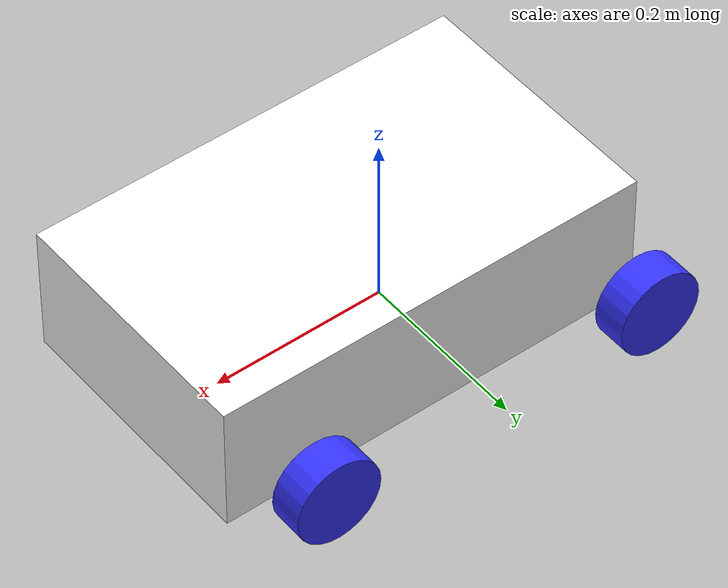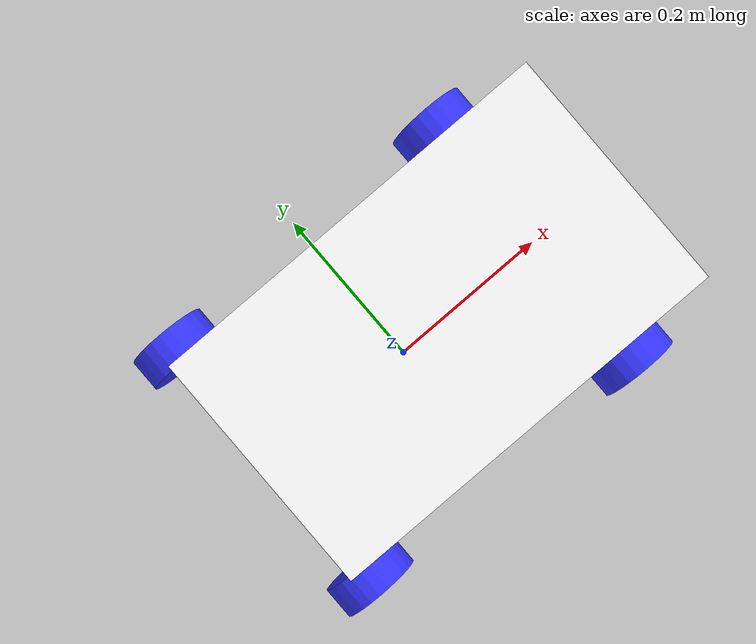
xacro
<?xml version="1.0"?>
<robot xmlns:xacro="http://www.ros.org/wiki/xacro">

    <xacro:include filename="inertial_macros.xacro"/>

    <material name ="white">
        <color rgba="1 1 1 1" />
    </material>

    <material name ="orange">
        <color rgba="1 0.3 0.1 1" />
    </material>

    <material name ="blue">
        <color rgba="0.2 0.2 1 1" />
    </material>

    <material name ="black">
        <color rgba="0 0 0 1" />
    </material>

    <material name ="red">
        <color rgba="1 0 0 1" />
    </material>

    <!-- BASE LINK -->

    <link name="base_link">

    </link>

    <!-- CHASSIS LINK -->

    <joint name="chassis_joint" type="fixed">
        <parent link="base_link"/>
        <child link="chassis"/>
        <origin xyz="-0.1 0 0"/>
    </joint>

    <link name="chassis">
        <visual>
            <origin xyz="0.15 0 0.075"/>
            <geometry>
                <box size="0.5 0.3 0.15"/>
            </geometry>
            <material name="white"/>
        </visual>
        <collision>
            <origin xyz="0.15 0 0.075"/>
            <geometry>
                <box size="0.3 0.3 0.15"/>
            </geometry>
        </collision>
        <xacro:inertial_box mass="0.5" x="0.3" y="0.3" z="0.3">
            <origin xyz="0.15 0 0.075" rpy="0 0 0"/>
        </xacro:inertial_box>
    </link>

    <gazebo reference="chassis">
        <material>Gazebo/White</material>
    </gazebo>

    <!-- LEFT WHEEL FRONT LINK -->

    <joint name="left_wheel_joint_front" type="continuous">
        <parent link="base_link"/>
        <child link="left_wheel_front"/>
        <origin xyz="0.2 0.175 0" rpy="-${pi/2} 0 0"/>
        <axis xyz="0 0 1"/>
    </joint>

    <link name="left_wheel_front">
        <visual>
            <geometry>
                <cylinder radius="0.05" length="0.04"/>
            </geometry>
            <material name="blue"/>
        </visual>
        <collision>
            <geometry>
                <cylinder radius="0.05" length="0.04"/>
            </geometry>
        </collision>
        <xacro:inertial_cylinder mass="0.1" length="0.04" radius="0.05">
            <origin xyz="0 0 0" rpy="0 0 0"/>
        </xacro:inertial_cylinder>
    </link>

    <gazebo reference="left_wheel_front">
        <material>Gazebo/Blue</material>
    </gazebo>

    <!-- LEFT WHEEL REAR LINK -->

    <joint name="left_wheel_joint_rear" type="fixed">
        <parent link="chassis"/>
        <child link="left_wheel_rear"/>
        <origin xyz="-0.1 0.175 0" rpy="-${pi/2} 0 0"/>
        <axis xyz="0 0 1"/>
    </joint>

    <link name="left_wheel_rear">
        <visual>
            <geometry>
                <cylinder radius="0.05" length="0.04"/>
            </geometry>
            <material name="blue"/>
        </visual>
        <collision>
            <geometry>
                <cylinder radius="0.05" length="0.04"/>
            </geometry>
        </collision>
        <xacro:inertial_cylinder mass="0.1" length="0.04" radius="0.05">
            <origin xyz="0 0 0" rpy="0 0 0"/>
        </xacro:inertial_cylinder>
    </link>

    <gazebo reference="left_wheel_rear">
        <material>Gazebo/Blue</material>
        <mu1 value="0.001"/>
        <mu2 value="0.001"/>
    </gazebo>

    <!-- RIGHT WHEEL FRONT LINK -->

    <joint name="right_wheel_joint_front" type="continuous">
        <parent link="base_link"/>
        <child link="right_wheel_front"/>
        <origin xyz="0.2 -0.175 0" rpy="${pi/2} 0 0"/>
        <axis xyz="0 0 -1"/>
    </joint>

    <link name="right_wheel_front">
        <visual>
            <geometry>
                <cylinder radius="0.05" length="0.04"/>
            </geometry>
            <material name="blue"/>
        </visual>
        <collision>
            <geometry>
                <cylinder radius="0.05" length="0.04"/>
            </geometry>
        </collision>
        <xacro:inertial_cylinder mass="0.1" length="0.04" radius="0.05">
            <origin xyz="0 0 0" rpy="0 0 0"/>
        </xacro:inertial_cylinder>
    </link>

    <gazebo reference="right_wheel_front">
        <material>Gazebo/Blue</material>
    </gazebo>

    <!-- RIGHT WHEEL REAR LINK -->

    <joint name="right_wheel_joint_rear" type="fixed">
        <parent link="chassis"/>
        <child link="right_wheel_rear"/>
        <origin xyz="-0.1 -0.175 0" rpy="${pi/2} 0 0"/>
        <axis xyz="0 0 -1"/>
    </joint>

    <link name="right_wheel_rear">
        <visual>
            <geometry>
                <cylinder radius="0.05" length="0.04"/>
            </geometry>
            <material name="blue"/>
        </visual>
        <collision>
            <geometry>
                <cylinder radius="0.05" length="0.04"/>
            </geometry>
        </collision>
        <xacro:inertial_cylinder mass="0.1" length="0.04" radius="0.05">
            <origin xyz="0 0 0" rpy="0 0 0"/>
        </xacro:inertial_cylinder>
    </link>

    <gazebo reference="right_wheel_rear">
        <material>Gazebo/Blue</material>
        <mu1 value="0.001"/>
        <mu2 value="0.001"/>
    </gazebo>

</robot>
